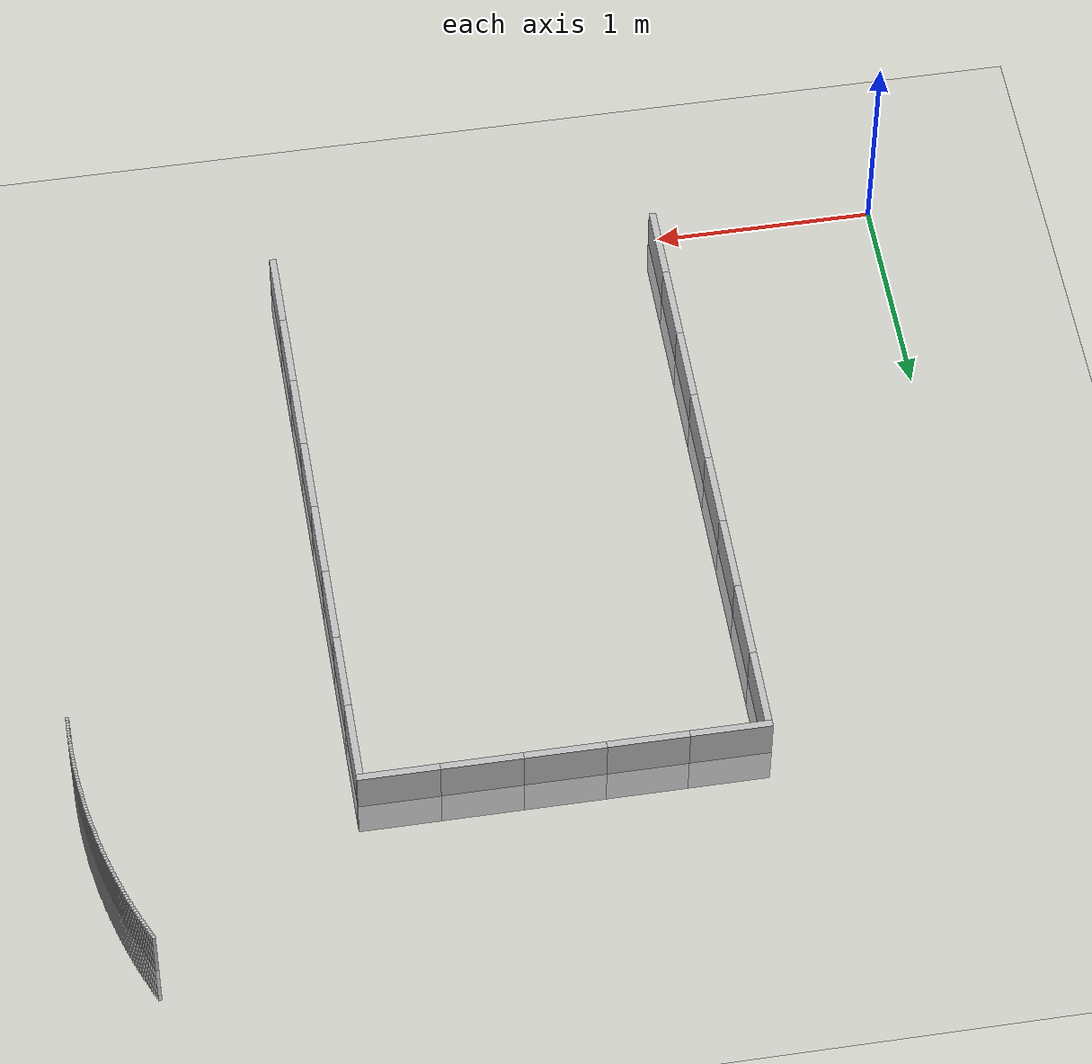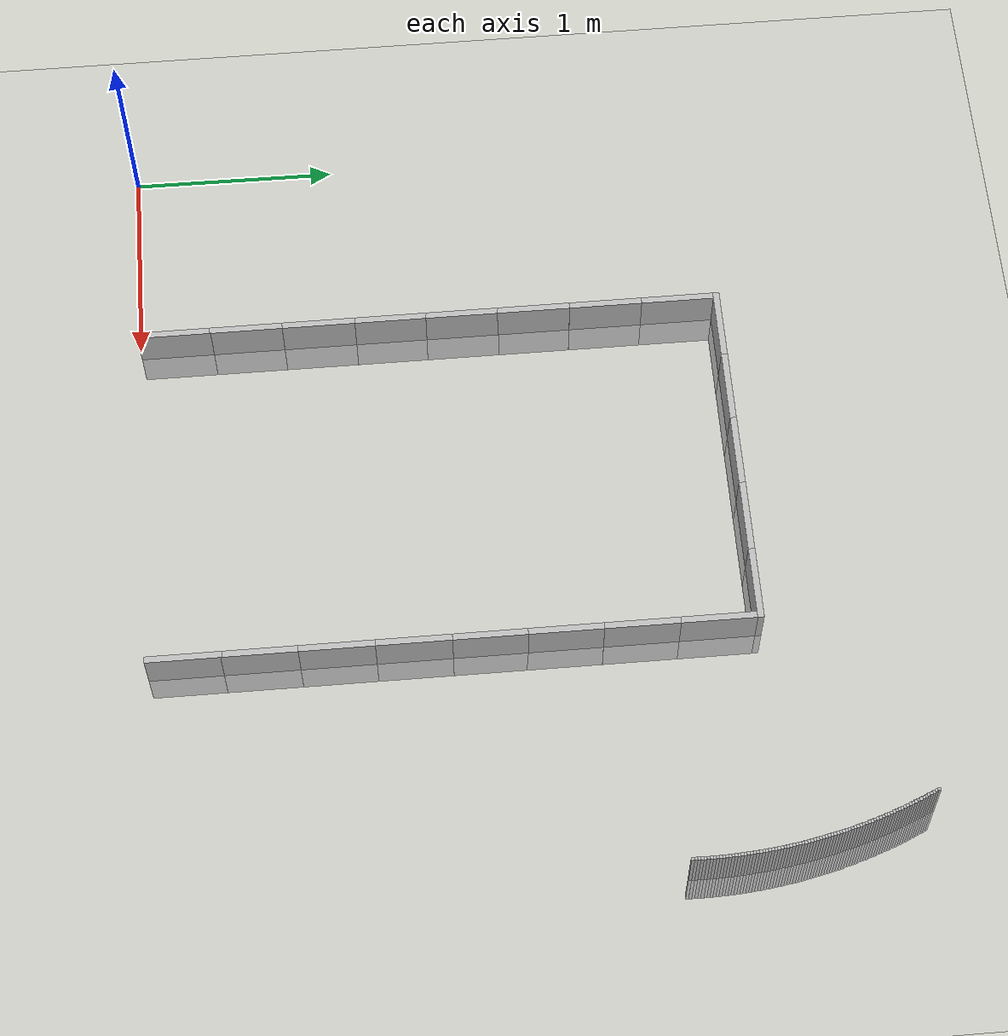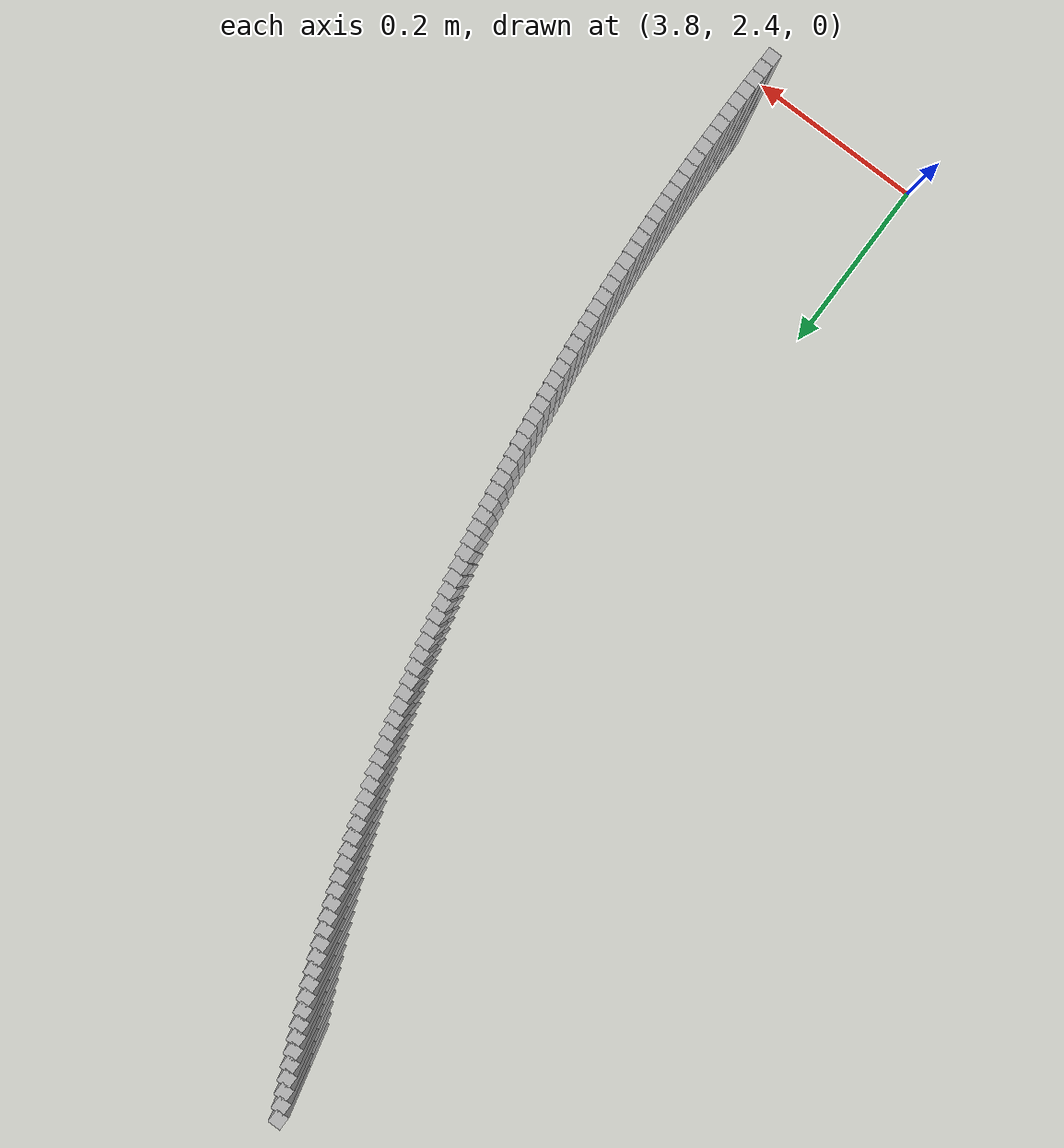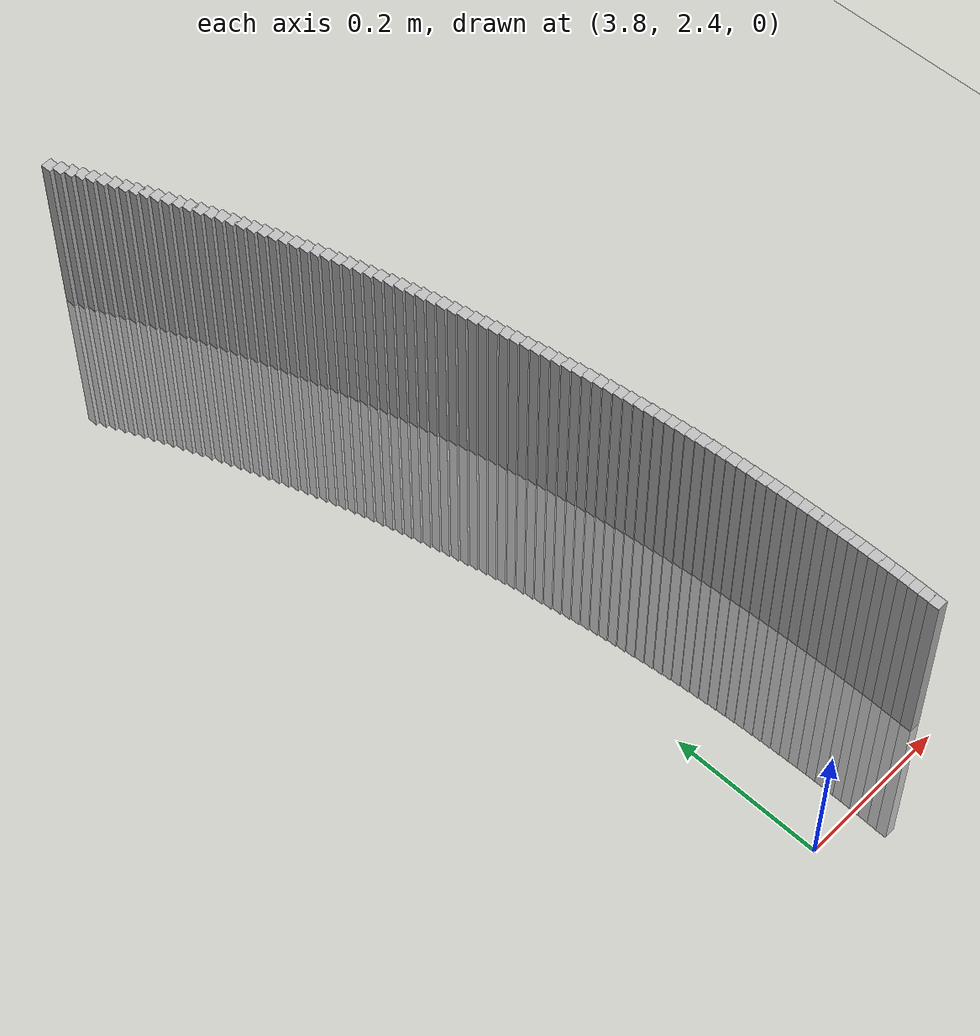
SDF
<sdf version="1.6">
 <world name="default">
  <model name="ground_plane">
   <static>1</static>
   <link name="link">
    <collision name="collision">
     <geometry><plane><normal>0 0 1</normal><size>100 100</size></plane></geometry>
     <surface>
      <contact><collide_bitmask>65535</collide_bitmask></contact>
      <friction><ode><mu>100</mu><mu2>50</mu2></ode></friction>
     </surface>
    </collision>
    <visual name="visual">
     <cast_shadows>0</cast_shadows>
     <geometry><plane><normal>0 0 1</normal><size>100 100</size></plane></geometry>
     <material>
      <script><uri>file://media/materials/scripts/gazebo.material</uri><name>Gazebo/Grey</name></script>
     </material>
    </visual>
   </link>
  </model>
  <model name="k404">
   <link name="211_link">
    <collision name="collision_211">
     <pose>3.7586545603426815 3.5716713941517746 0 0 -0 0</pose>
     <geometry><box><size>0.015 0.015 0.50</size></box></geometry>
    </collision>
    <visual name="visual_211">
     <pose>3.7586545603426815 3.5716713941517746 0 0 -0 0</pose>
     <geometry><box><size>0.015 0.015 0.50</size></box></geometry>
    </visual>
   </link>
   <link name="212_link">
    <collision name="collision_212">
     <pose>3.764573403993453 3.5591068397123613 0 0 -0 0</pose>
     <geometry><box><size>0.015 0.015 0.50</size></box></geometry>
    </collision>
    <visual name="visual_212">
     <pose>3.764573403993453 3.5591068397123613 0 0 -0 0</pose>
     <geometry><box><size>0.015 0.015 0.50</size></box></geometry>
    </visual>
   </link>
   <link name="213_link">
    <collision name="collision_213">
     <pose>3.7704223535831294 3.546509596874316 0 0 -0 0</pose>
     <geometry><box><size>0.015 0.015 0.50</size></box></geometry>
    </collision>
    <visual name="visual_213">
     <pose>3.7704223535831294 3.546509596874316 0 0 -0 0</pose>
     <geometry><box><size>0.015 0.015 0.50</size></box></geometry>
    </visual>
   </link>
   <link name="214_link">
    <collision name="collision_214">
     <pose>3.7762012285890396 3.53388005444043 0 0 -0 0</pose>
     <geometry><box><size>0.015 0.015 0.50</size></box></geometry>
    </collision>
    <visual name="visual_214">
     <pose>3.7762012285890396 3.53388005444043 0 0 -0 0</pose>
     <geometry><box><size>0.015 0.015 0.50</size></box></geometry>
    </visual>
   </link>
   <link name="215_link">
    <collision name="collision_215">
     <pose>3.7819098506513025 3.5212186022103937 0 0 -0 0</pose>
     <geometry><box><size>0.015 0.015 0.50</size></box></geometry>
    </collision>
    <visual name="visual_215">
     <pose>3.7819098506513025 3.5212186022103937 0 0 -0 0</pose>
     <geometry><box><size>0.015 0.015 0.50</size></box></geometry>
    </visual>
   </link>
   <link name="216_link">
    <collision name="collision_216">
     <pose>3.7875480435783326 3.5085256309687636 0 0 -0 0</pose>
     <geometry><box><size>0.015 0.015 0.50</size></box></geometry>
    </collision>
    <visual name="visual_216">
     <pose>3.7875480435783326 3.5085256309687636 0 0 -0 0</pose>
     <geometry><box><size>0.015 0.015 0.50</size></box></geometry>
    </visual>
   </link>
   <link name="217_link">
    <collision name="collision_217">
     <pose>3.7931156333522775 3.4958015324729037 0 0 -0 0</pose>
     <geometry><box><size>0.015 0.015 0.50</size></box></geometry>
    </collision>
    <visual name="visual_217">
     <pose>3.7931156333522775 3.4958015324729037 0 0 -0 0</pose>
     <geometry><box><size>0.015 0.015 0.50</size></box></geometry>
    </visual>
   </link>
   <link name="218_link">
    <collision name="collision_218">
     <pose>3.7986124481343877 3.4830466994408944 0 0 -0 0</pose>
     <geometry><box><size>0.015 0.015 0.50</size></box></geometry>
    </collision>
    <visual name="visual_218">
     <pose>3.7986124481343877 3.4830466994408944 0 0 -0 0</pose>
     <geometry><box><size>0.015 0.015 0.50</size></box></geometry>
    </visual>
   </link>
   <link name="219_link">
    <collision name="collision_219">
     <pose>3.8040383182703232 3.470261525539409 0 0 -0 0</pose>
     <geometry><box><size>0.015 0.015 0.50</size></box></geometry>
    </collision>
    <visual name="visual_219">
     <pose>3.8040383182703232 3.470261525539409 0 0 -0 0</pose>
     <geometry><box><size>0.015 0.015 0.50</size></box></geometry>
    </visual>
   </link>
   <link name="220_link">
    <collision name="collision_220">
     <pose>3.8093930762953865 3.457446405371565 0 0 -0 0</pose>
     <geometry><box><size>0.015 0.015 0.50</size></box></geometry>
    </collision>
    <visual name="visual_220">
     <pose>3.8093930762953865 3.457446405371565 0 0 -0 0</pose>
     <geometry><box><size>0.015 0.015 0.50</size></box></geometry>
    </visual>
   </link>
   <link name="221_link">
    <collision name="collision_221">
     <pose>3.8146765569396934 3.4446017344647455 0 0 -0 0</pose>
     <geometry><box><size>0.015 0.015 0.50</size></box></geometry>
    </collision>
    <visual name="visual_221">
     <pose>3.8146765569396934 3.4446017344647455 0 0 -0 0</pose>
     <geometry><box><size>0.015 0.015 0.50</size></box></geometry>
    </visual>
   </link>
   <link name="222_link">
    <collision name="collision_222">
     <pose>3.8198885971332732 3.431727909258391 0 0 -0 0</pose>
     <geometry><box><size>0.015 0.015 0.50</size></box></geometry>
    </collision>
    <visual name="visual_222">
     <pose>3.8198885971332732 3.431727909258391 0 0 -0 0</pose>
     <geometry><box><size>0.015 0.015 0.50</size></box></geometry>
    </visual>
   </link>
   <link name="223_link">
    <collision name="collision_223">
     <pose>3.825029036011102 3.418825327091764 0 0 -0 0</pose>
     <geometry><box><size>0.015 0.015 0.50</size></box></geometry>
    </collision>
    <visual name="visual_223">
     <pose>3.825029036011102 3.418825327091764 0 0 -0 0</pose>
     <geometry><box><size>0.015 0.015 0.50</size></box></geometry>
    </visual>
   </link>
   <link name="224_link">
    <collision name="collision_224">
     <pose>3.8300977149180655 3.405894386191684 0 0 -0 0</pose>
     <geometry><box><size>0.015 0.015 0.50</size></box></geometry>
    </collision>
    <visual name="visual_224">
     <pose>3.8300977149180655 3.405894386191684 0 0 -0 0</pose>
     <geometry><box><size>0.015 0.015 0.50</size></box></geometry>
    </visual>
   </link>
   <link name="225_link">
    <collision name="collision_225">
     <pose>3.835094477413861 3.3929354856602396 0 0 -0 0</pose>
     <geometry><box><size>0.015 0.015 0.50</size></box></geometry>
    </collision>
    <visual name="visual_225">
     <pose>3.835094477413861 3.3929354856602396 0 0 -0 0</pose>
     <geometry><box><size>0.015 0.015 0.50</size></box></geometry>
    </visual>
   </link>
   <link name="226_link">
    <collision name="collision_226">
     <pose>3.840019169277819 3.379949025462467 0 0 -0 0</pose>
     <geometry><box><size>0.015 0.015 0.50</size></box></geometry>
    </collision>
    <visual name="visual_226">
     <pose>3.840019169277819 3.379949025462467 0 0 -0 0</pose>
     <geometry><box><size>0.015 0.015 0.50</size></box></geometry>
    </visual>
   </link>
   <link name="227_link">
    <collision name="collision_227">
     <pose>3.8448716385136685 3.366935406414009 0 0 -0 0</pose>
     <geometry><box><size>0.015 0.015 0.50</size></box></geometry>
    </collision>
    <visual name="visual_227">
     <pose>3.8448716385136685 3.366935406414009 0 0 -0 0</pose>
     <geometry><box><size>0.015 0.015 0.50</size></box></geometry>
    </visual>
   </link>
   <link name="228_link">
    <collision name="collision_228">
     <pose>3.849651735354226 3.3538950301687405 0 0 -0 0</pose>
     <geometry><box><size>0.015 0.015 0.50</size></box></geometry>
    </collision>
    <visual name="visual_228">
     <pose>3.849651735354226 3.3538950301687405 0 0 -0 0</pose>
     <geometry><box><size>0.015 0.015 0.50</size></box></geometry>
    </visual>
   </link>
   <link name="229_link">
    <collision name="collision_229">
     <pose>3.854359312266017 3.3408282992063754 0 0 -0 0</pose>
     <geometry><box><size>0.015 0.015 0.50</size></box></geometry>
    </collision>
    <visual name="visual_229">
     <pose>3.854359312266017 3.3408282992063754 0 0 -0 0</pose>
     <geometry><box><size>0.015 0.015 0.50</size></box></geometry>
    </visual>
   </link>
   <link name="230_link">
    <collision name="collision_230">
     <pose>3.858994223953833 3.327735616820042 0 0 -0 0</pose>
     <geometry><box><size>0.015 0.015 0.50</size></box></geometry>
    </collision>
    <visual name="visual_230">
     <pose>3.858994223953833 3.327735616820042 0 0 -0 0</pose>
     <geometry><box><size>0.015 0.015 0.50</size></box></geometry>
    </visual>
   </link>
   <link name="231_link">
    <collision name="collision_231">
     <pose>3.86355632736521 3.3146173871038354 0 0 -0 0</pose>
     <geometry><box><size>0.015 0.015 0.50</size></box></geometry>
    </collision>
    <visual name="visual_231">
     <pose>3.86355632736521 3.3146173871038354 0 0 -0 0</pose>
     <geometry><box><size>0.015 0.015 0.50</size></box></geometry>
    </visual>
   </link>
   <link name="232_link">
    <collision name="collision_232">
     <pose>3.868045481694851 3.3014740149403483 0 0 -0 0</pose>
     <geometry><box><size>0.015 0.015 0.50</size></box></geometry>
    </collision>
    <visual name="visual_232">
     <pose>3.868045481694851 3.3014740149403483 0 0 -0 0</pose>
     <geometry><box><size>0.015 0.015 0.50</size></box></geometry>
    </visual>
   </link>
   <link name="233_link">
    <collision name="collision_233">
     <pose>3.8724615483889657 3.288305905988172 0 0 -0 0</pose>
     <geometry><box><size>0.015 0.015 0.50</size></box></geometry>
    </collision>
    <visual name="visual_233">
     <pose>3.8724615483889657 3.288305905988172 0 0 -0 0</pose>
     <geometry><box><size>0.015 0.015 0.50</size></box></geometry>
    </visual>
   </link>
   <link name="234_link">
    <collision name="collision_234">
     <pose>3.87680439114955 3.275113466669376 0 0 -0 0</pose>
     <geometry><box><size>0.015 0.015 0.50</size></box></geometry>
    </collision>
    <visual name="visual_234">
     <pose>3.87680439114955 3.275113466669376 0 0 -0 0</pose>
     <geometry><box><size>0.015 0.015 0.50</size></box></geometry>
    </visual>
   </link>
   <link name="235_link">
    <collision name="collision_235">
     <pose>3.8810738759385917 3.2618971041569678 0 0 -0 0</pose>
     <geometry><box><size>0.015 0.015 0.50</size></box></geometry>
    </collision>
    <visual name="visual_235">
     <pose>3.8810738759385917 3.2618971041569678 0 0 -0 0</pose>
     <geometry><box><size>0.015 0.015 0.50</size></box></geometry>
    </visual>
   </link>
   <link name="236_link">
    <collision name="collision_236">
     <pose>3.8852698709822078 3.2486572263623197 0 0 -0 0</pose>
     <geometry><box><size>0.015 0.015 0.50</size></box></geometry>
    </collision>
    <visual name="visual_236">
     <pose>3.8852698709822078 3.2486572263623197 0 0 -0 0</pose>
     <geometry><box><size>0.015 0.015 0.50</size></box></geometry>
    </visual>
   </link>
   <link name="237_link">
    <collision name="collision_237">
     <pose>3.8893922467747117 3.2353942419225854 0 0 -0 0</pose>
     <geometry><box><size>0.015 0.015 0.50</size></box></geometry>
    </collision>
    <visual name="visual_237">
     <pose>3.8893922467747117 3.2353942419225854 0 0 -0 0</pose>
     <geometry><box><size>0.015 0.015 0.50</size></box></geometry>
    </visual>
   </link>
   <link name="238_link">
    <collision name="collision_238">
     <pose>3.8934408760826105 3.222108560188083 0 0 -0 0</pose>
     <geometry><box><size>0.015 0.015 0.50</size></box></geometry>
    </collision>
    <visual name="visual_238">
     <pose>3.8934408760826105 3.222108560188083 0 0 -0 0</pose>
     <geometry><box><size>0.015 0.015 0.50</size></box></geometry>
    </visual>
   </link>
   <link name="239_link">
    <collision name="collision_239">
     <pose>3.89741563394853 3.2088005912096635 0 0 -0 0</pose>
     <geometry><box><size>0.015 0.015 0.50</size></box></geometry>
    </collision>
    <visual name="visual_239">
     <pose>3.89741563394853 3.2088005912096635 0 0 -0 0</pose>
     <geometry><box><size>0.015 0.015 0.50</size></box></geometry>
    </visual>
   </link>
   <link name="240_link">
    <collision name="collision_240">
     <pose>3.901316397695074 3.1954707457260536 0 0 -0 0</pose>
     <geometry><box><size>0.015 0.015 0.50</size></box></geometry>
    </collision>
    <visual name="visual_240">
     <pose>3.901316397695074 3.1954707457260536 0 0 -0 0</pose>
     <geometry><box><size>0.015 0.015 0.50</size></box></geometry>
    </visual>
   </link>
   <link name="241_link">
    <collision name="collision_241">
     <pose>3.9051430469286093 3.1821194351511797 0 0 -0 0</pose>
     <geometry><box><size>0.015 0.015 0.50</size></box></geometry>
    </collision>
    <visual name="visual_241">
     <pose>3.9051430469286093 3.1821194351511797 0 0 -0 0</pose>
     <geometry><box><size>0.015 0.015 0.50</size></box></geometry>
    </visual>
   </link>
   <link name="242_link">
    <collision name="collision_242">
     <pose>3.9088954635429825 3.1687470715614685 0 0 -0 0</pose>
     <geometry><box><size>0.015 0.015 0.50</size></box></geometry>
    </collision>
    <visual name="visual_242">
     <pose>3.9088954635429825 3.1687470715614685 0 0 -0 0</pose>
     <geometry><box><size>0.015 0.015 0.50</size></box></geometry>
    </visual>
   </link>
   <link name="243_link">
    <collision name="collision_243">
     <pose>3.912573531723163 3.1553540676831293 0 0 -0 0</pose>
     <geometry><box><size>0.015 0.015 0.50</size></box></geometry>
    </collision>
    <visual name="visual_243">
     <pose>3.912573531723163 3.1553540676831293 0 0 -0 0</pose>
     <geometry><box><size>0.015 0.015 0.50</size></box></geometry>
    </visual>
   </link>
   <link name="244_link">
    <collision name="collision_244">
     <pose>3.9161771379488206 3.141940836879417 0 0 -0 0</pose>
     <geometry><box><size>0.015 0.015 0.50</size></box></geometry>
    </collision>
    <visual name="visual_244">
     <pose>3.9161771379488206 3.141940836879417 0 0 -0 0</pose>
     <geometry><box><size>0.015 0.015 0.50</size></box></geometry>
    </visual>
   </link>
   <link name="245_link">
    <collision name="collision_245">
     <pose>3.9197061709978267 3.1285077931378713 0 0 -0 0</pose>
     <geometry><box><size>0.015 0.015 0.50</size></box></geometry>
    </collision>
    <visual name="visual_245">
     <pose>3.9197061709978267 3.1285077931378713 0 0 -0 0</pose>
     <geometry><box><size>0.015 0.015 0.50</size></box></geometry>
    </visual>
   </link>
   <link name="246_link">
    <collision name="collision_246">
     <pose>3.923160521949688 3.115055351057541 0 0 -0 0</pose>
     <geometry><box><size>0.015 0.015 0.50</size></box></geometry>
    </collision>
    <visual name="visual_246">
     <pose>3.923160521949688 3.115055351057541 0 0 -0 0</pose>
     <geometry><box><size>0.015 0.015 0.50</size></box></geometry>
    </visual>
   </link>
   <link name="247_link">
    <collision name="collision_247">
     <pose>3.9265400841889093 3.101583925836189 0 0 -0 0</pose>
     <geometry><box><size>0.015 0.015 0.50</size></box></geometry>
    </collision>
    <visual name="visual_247">
     <pose>3.9265400841889093 3.101583925836189 0 0 -0 0</pose>
     <geometry><box><size>0.015 0.015 0.50</size></box></geometry>
    </visual>
   </link>
   <link name="248_link">
    <collision name="collision_248">
     <pose>3.9298447534082817 3.0880939332574737 0 0 -0 0</pose>
     <geometry><box><size>0.015 0.015 0.50</size></box></geometry>
    </collision>
    <visual name="visual_248">
     <pose>3.9298447534082817 3.0880939332574737 0 0 -0 0</pose>
     <geometry><box><size>0.015 0.015 0.50</size></box></geometry>
    </visual>
   </link>
   <link name="249_link">
    <collision name="collision_249">
     <pose>3.933074427612105 3.07458578967812 0 0 -0 0</pose>
     <geometry><box><size>0.015 0.015 0.50</size></box></geometry>
    </collision>
    <visual name="visual_249">
     <pose>3.933074427612105 3.07458578967812 0 0 -0 0</pose>
     <geometry><box><size>0.015 0.015 0.50</size></box></geometry>
    </visual>
   </link>
   <link name="250_link">
    <collision name="collision_250">
     <pose>3.9362290071193318 3.061059912015068 0 0 -0 0</pose>
     <geometry><box><size>0.015 0.015 0.50</size></box></geometry>
    </collision>
    <visual name="visual_250">
     <pose>3.9362290071193318 3.061059912015068 0 0 -0 0</pose>
     <geometry><box><size>0.015 0.015 0.50</size></box></geometry>
    </visual>
   </link>
   <link name="251_link">
    <collision name="collision_251">
     <pose>3.939308394566648 3.047516717732604 0 0 -0 0</pose>
     <geometry><box><size>0.015 0.015 0.50</size></box></geometry>
    </collision>
    <visual name="visual_251">
     <pose>3.939308394566648 3.047516717732604 0 0 -0 0</pose>
     <geometry><box><size>0.015 0.015 0.50</size></box></geometry>
    </visual>
   </link>
   <link name="252_link">
    <collision name="collision_252">
     <pose>3.942312494911475 3.0339566248294756 0 0 -0 0</pose>
     <geometry><box><size>0.015 0.015 0.50</size></box></geometry>
    </collision>
    <visual name="visual_252">
     <pose>3.942312494911475 3.0339566248294756 0 0 -0 0</pose>
     <geometry><box><size>0.015 0.015 0.50</size></box></geometry>
    </visual>
   </link>
   <link name="253_link">
    <collision name="collision_253">
     <pose>3.945241215434906 3.0203800518259927 0 0 -0 0</pose>
     <geometry><box><size>0.015 0.015 0.50</size></box></geometry>
    </collision>
    <visual name="visual_253">
     <pose>3.945241215434906 3.0203800518259927 0 0 -0 0</pose>
     <geometry><box><size>0.015 0.015 0.50</size></box></geometry>
    </visual>
   </link>
   <link name="254_link">
    <collision name="collision_254">
     <pose>3.948094465744564 3.006787417751109 0 0 -0 0</pose>
     <geometry><box><size>0.015 0.015 0.50</size></box></geometry>
    </collision>
    <visual name="visual_254">
     <pose>3.948094465744564 3.006787417751109 0 0 -0 0</pose>
     <geometry><box><size>0.015 0.015 0.50</size></box></geometry>
    </visual>
   </link>
   <link name="255_link">
    <collision name="collision_255">
     <pose>3.9508721577773946 2.9931791421294878 0 0 -0 0</pose>
     <geometry><box><size>0.015 0.015 0.50</size></box></geometry>
    </collision>
    <visual name="visual_255">
     <pose>3.9508721577773946 2.9931791421294878 0 0 -0 0</pose>
     <geometry><box><size>0.015 0.015 0.50</size></box></geometry>
    </visual>
   </link>
   <link name="256_link">
    <collision name="collision_256">
     <pose>3.953574205802383 2.979555644968556 0 0 -0 0</pose>
     <geometry><box><size>0.015 0.015 0.50</size></box></geometry>
    </collision>
    <visual name="visual_256">
     <pose>3.953574205802383 2.979555644968556 0 0 -0 0</pose>
     <geometry><box><size>0.015 0.015 0.50</size></box></geometry>
    </visual>
   </link>
   <link name="257_link">
    <collision name="collision_257">
     <pose>3.9562005264231983 2.965917346745539 0 0 -0 0</pose>
     <geometry><box><size>0.015 0.015 0.50</size></box></geometry>
    </collision>
    <visual name="visual_257">
     <pose>3.9562005264231983 2.965917346745539 0 0 -0 0</pose>
     <geometry><box><size>0.015 0.015 0.50</size></box></geometry>
    </visual>
   </link>
   <link name="258_link">
    <collision name="collision_258">
     <pose>3.9587510385807723 2.952264668394486 0 0 -0 0</pose>
     <geometry><box><size>0.015 0.015 0.50</size></box></geometry>
    </collision>
    <visual name="visual_258">
     <pose>3.9587510385807723 2.952264668394486 0 0 -0 0</pose>
     <geometry><box><size>0.015 0.015 0.50</size></box></geometry>
    </visual>
   </link>
   <link name="259_link">
    <collision name="collision_259">
     <pose>3.9612256635557954 2.9385980312932727 0 0 -0 0</pose>
     <geometry><box><size>0.015 0.015 0.50</size></box></geometry>
    </collision>
    <visual name="visual_259">
     <pose>3.9612256635557954 2.9385980312932727 0 0 -0 0</pose>
     <geometry><box><size>0.015 0.015 0.50</size></box></geometry>
    </visual>
   </link>
   <link name="260_link">
    <collision name="collision_260">
     <pose>3.9636243249711502 2.9249178572506027 0 0 -0 0</pose>
     <geometry><box><size>0.015 0.015 0.50</size></box></geometry>
    </collision>
    <visual name="visual_260">
     <pose>3.9636243249711502 2.9249178572506027 0 0 -0 0</pose>
     <geometry><box><size>0.015 0.015 0.50</size></box></geometry>
    </visual>
   </link>
   <link name="261_link">
    <collision name="collision_261">
     <pose>3.965946948794268 2.911224568492983 0 0 -0 0</pose>
     <geometry><box><size>0.015 0.015 0.50</size></box></geometry>
    </collision>
    <visual name="visual_261">
     <pose>3.965946948794268 2.911224568492983 0 0 -0 0</pose>
     <geometry><box><size>0.015 0.015 0.50</size></box></geometry>
    </visual>
   </link>
   <link name="262_link">
    <collision name="collision_262">
     <pose>3.968193463339412 2.897518587651696 0 0 -0 0</pose>
     <geometry><box><size>0.015 0.015 0.50</size></box></geometry>
    </collision>
    <visual name="visual_262">
     <pose>3.968193463339412 2.897518587651696 0 0 -0 0</pose>
     <geometry><box><size>0.015 0.015 0.50</size></box></geometry>
    </visual>
   </link>
   <link name="263_link">
    <collision name="collision_263">
     <pose>3.970363799269892 2.8838003377497543 0 0 -0 0</pose>
     <geometry><box><size>0.015 0.015 0.50</size></box></geometry>
    </collision>
    <visual name="visual_263">
     <pose>3.970363799269892 2.8838003377497543 0 0 -0 0</pose>
     <geometry><box><size>0.015 0.015 0.50</size></box></geometry>
    </visual>
   </link>
   <link name="264_link">
    <collision name="collision_264">
     <pose>3.972457889600203 2.870070242188843 0 0 -0 0</pose>
     <geometry><box><size>0.015 0.015 0.50</size></box></geometry>
    </collision>
    <visual name="visual_264">
     <pose>3.972457889600203 2.870070242188843 0 0 -0 0</pose>
     <geometry><box><size>0.015 0.015 0.50</size></box></geometry>
    </visual>
   </link>
   <link name="265_link">
    <collision name="collision_265">
     <pose>3.9744756696980947 2.8563287247362537 0 0 -0 0</pose>
     <geometry><box><size>0.015 0.015 0.50</size></box></geometry>
    </collision>
    <visual name="visual_265">
     <pose>3.9744756696980947 2.8563287247362537 0 0 -0 0</pose>
     <geometry><box><size>0.015 0.015 0.50</size></box></geometry>
    </visual>
   </link>
   <link name="266_link">
    <collision name="collision_266">
     <pose>3.976417077286563 2.842576209511805 0 0 -0 0</pose>
     <geometry><box><size>0.015 0.015 0.50</size></box></geometry>
    </collision>
    <visual name="visual_266">
     <pose>3.976417077286563 2.842576209511805 0 0 -0 0</pose>
     <geometry><box><size>0.015 0.015 0.50</size></box></geometry>
    </visual>
   </link>
   <link name="267_link">
    <collision name="collision_267">
     <pose>3.9782820524457754 2.828813120974751 0 0 -0 0</pose>
     <geometry><box><size>0.015 0.015 0.50</size></box></geometry>
    </collision>
    <visual name="visual_267">
     <pose>3.9782820524457754 2.828813120974751 0 0 -0 0</pose>
     <geometry><box><size>0.015 0.015 0.50</size></box></geometry>
    </visual>
   </link>
   <link name="268_link">
    <collision name="collision_268">
     <pose>3.980070537614917 2.815039883910683 0 0 -0 0</pose>
     <geometry><box><size>0.015 0.015 0.50</size></box></geometry>
    </collision>
    <visual name="visual_268">
     <pose>3.980070537614917 2.815039883910683 0 0 -0 0</pose>
     <geometry><box><size>0.015 0.015 0.50</size></box></geometry>
    </visual>
   </link>
   <link name="269_link">
    <collision name="collision_269">
     <pose>3.9817824775939714 2.8012569234184164 0 0 -0 0</pose>
     <geometry><box><size>0.015 0.015 0.50</size></box></geometry>
    </collision>
    <visual name="visual_269">
     <pose>3.9817824775939714 2.8012569234184164 0 0 -0 0</pose>
     <geometry><box><size>0.015 0.015 0.50</size></box></geometry>
    </visual>
   </link>
   <link name="270_link">
    <collision name="collision_270">
     <pose>3.98341781954542 2.787464664896873 0 0 -0 0</pose>
     <geometry><box><size>0.015 0.015 0.50</size></box></geometry>
    </collision>
    <visual name="visual_270">
     <pose>3.98341781954542 2.787464664896873 0 0 -0 0</pose>
     <geometry><box><size>0.015 0.015 0.50</size></box></geometry>
    </visual>
   </link>
   <link name="271_link">
    <collision name="collision_271">
     <pose>3.984976512995876 2.773663534031949 0 0 -0 0</pose>
     <geometry><box><size>0.015 0.015 0.50</size></box></geometry>
    </collision>
    <visual name="visual_271">
     <pose>3.984976512995876 2.773663534031949 0 0 -0 0</pose>
     <geometry><box><size>0.015 0.015 0.50</size></box></geometry>
    </visual>
   </link>
   <link name="272_link">
    <collision name="collision_272">
     <pose>3.986458509837641 2.7598539567833775 0 0 -0 0</pose>
     <geometry><box><size>0.015 0.015 0.50</size></box></geometry>
    </collision>
    <visual name="visual_272">
     <pose>3.986458509837641 2.7598539567833775 0 0 -0 0</pose>
     <geometry><box><size>0.015 0.015 0.50</size></box></geometry>
    </visual>
   </link>
   <link name="273_link">
    <collision name="collision_273">
     <pose>3.987863764330189 2.7460363593715824 0 0 -0 0</pose>
     <geometry><box><size>0.015 0.015 0.50</size></box></geometry>
    </collision>
    <visual name="visual_273">
     <pose>3.987863764330189 2.7460363593715824 0 0 -0 0</pose>
     <geometry><box><size>0.015 0.015 0.50</size></box></geometry>
    </visual>
   </link>
   <link name="274_link">
    <collision name="collision_274">
     <pose>3.989192233101579 2.732211168264523 0 0 -0 0</pose>
     <geometry><box><size>0.015 0.015 0.50</size></box></geometry>
    </collision>
    <visual name="visual_274">
     <pose>3.989192233101579 2.732211168264523 0 0 -0 0</pose>
     <geometry><box><size>0.015 0.015 0.50</size></box></geometry>
    </visual>
   </link>
   <link name="275_link">
    <collision name="collision_275">
     <pose>3.9904438751497944 2.718378810164532 0 0 -0 0</pose>
     <geometry><box><size>0.015 0.015 0.50</size></box></geometry>
    </collision>
    <visual name="visual_275">
     <pose>3.9904438751497944 2.718378810164532 0 0 -0 0</pose>
     <geometry><box><size>0.015 0.015 0.50</size></box></geometry>
    </visual>
   </link>
   <link name="276_link">
    <collision name="collision_276">
     <pose>3.991618651844006 2.7045397119951424 0 0 -0 0</pose>
     <geometry><box><size>0.015 0.015 0.50</size></box></geometry>
    </collision>
    <visual name="visual_276">
     <pose>3.991618651844006 2.7045397119951424 0 0 -0 0</pose>
     <geometry><box><size>0.015 0.015 0.50</size></box></geometry>
    </visual>
   </link>
   <link name="277_link">
    <collision name="collision_277">
     <pose>3.9927165269257694 2.690694300887916 0 0 -0 0</pose>
     <geometry><box><size>0.015 0.015 0.50</size></box></geometry>
    </collision>
    <visual name="visual_277">
     <pose>3.9927165269257694 2.690694300887916 0 0 -0 0</pose>
     <geometry><box><size>0.015 0.015 0.50</size></box></geometry>
    </visual>
   </link>
   <link name="278_link">
    <collision name="collision_278">
     <pose>3.993737466510136 2.6768430041692572 0 0 -0 0</pose>
     <geometry><box><size>0.015 0.015 0.50</size></box></geometry>
    </collision>
    <visual name="visual_278">
     <pose>3.993737466510136 2.6768430041692572 0 0 -0 0</pose>
     <geometry><box><size>0.015 0.015 0.50</size></box></geometry>
    </visual>
   </link>
   <link name="279_link">
    <collision name="collision_279">
     <pose>3.9946814390867074 2.662986249347224 0 0 -0 0</pose>
     <geometry><box><size>0.015 0.015 0.50</size></box></geometry>
    </collision>
    <visual name="visual_279">
     <pose>3.9946814390867074 2.662986249347224 0 0 -0 0</pose>
     <geometry><box><size>0.015 0.015 0.50</size></box></geometry>
    </visual>
   </link>
   <link name="280_link">
    <collision name="collision_280">
     <pose>3.9955484155206014 2.6491244640983345 0 0 -0 0</pose>
     <geometry><box><size>0.015 0.015 0.50</size></box></geometry>
    </collision>
    <visual name="visual_280">
     <pose>3.9955484155206014 2.6491244640983345 0 0 -0 0</pose>
     <geometry><box><size>0.015 0.015 0.50</size></box></geometry>
    </visual>
   </link>
   <link name="281_link">
    <collision name="collision_281">
     <pose>3.9963383690533556 2.6352580762543663 0 0 -0 0</pose>
     <geometry><box><size>0.015 0.015 0.50</size></box></geometry>
    </collision>
    <visual name="visual_281">
     <pose>3.9963383690533556 2.6352580762543663 0 0 -0 0</pose>
     <geometry><box><size>0.015 0.015 0.50</size></box></geometry>
    </visual>
   </link>
   <link name="282_link">
    <collision name="collision_282">
     <pose>3.997051275303751 2.621387513789152 0 0 -0 0</pose>
     <geometry><box><size>0.015 0.015 0.50</size></box></geometry>
    </collision>
    <visual name="visual_282">
     <pose>3.997051275303751 2.621387513789152 0 0 -0 0</pose>
     <geometry><box><size>0.015 0.015 0.50</size></box></geometry>
    </visual>
   </link>
   <link name="283_link">
    <collision name="collision_283">
     <pose>3.997687112268564 2.607513204805371 0 0 -0 0</pose>
     <geometry><box><size>0.015 0.015 0.50</size></box></geometry>
    </collision>
    <visual name="visual_283">
     <pose>3.997687112268564 2.607513204805371 0 0 -0 0</pose>
     <geometry><box><size>0.015 0.015 0.50</size></box></geometry>
    </visual>
   </link>
   <link name="284_link">
    <collision name="collision_284">
     <pose>3.998245860323248 2.5936355775213333 0 0 -0 0</pose>
     <geometry><box><size>0.015 0.015 0.50</size></box></geometry>
    </collision>
    <visual name="visual_284">
     <pose>3.998245860323248 2.5936355775213333 0 0 -0 0</pose>
     <geometry><box><size>0.015 0.015 0.50</size></box></geometry>
    </visual>
   </link>
   <link name="285_link">
    <collision name="collision_285">
     <pose>3.998727502222537 2.579755060257769 0 0 -0 0</pose>
     <geometry><box><size>0.015 0.015 0.50</size></box></geometry>
    </collision>
    <visual name="visual_285">
     <pose>3.998727502222537 2.579755060257769 0 0 -0 0</pose>
     <geometry><box><size>0.015 0.015 0.50</size></box></geometry>
    </visual>
   </link>
   <link name="286_link">
    <collision name="collision_286">
     <pose>3.999132023100979 2.565872081424602 0 0 -0 0</pose>
     <geometry><box><size>0.015 0.015 0.50</size></box></geometry>
    </collision>
    <visual name="visual_286">
     <pose>3.999132023100979 2.565872081424602 0 0 -0 0</pose>
     <geometry><box><size>0.015 0.015 0.50</size></box></geometry>
    </visual>
   </link>
   <link name="287_link">
    <collision name="collision_287">
     <pose>3.9994594104733925 2.551987069507731 0 0 -0 0</pose>
     <geometry><box><size>0.015 0.015 0.50</size></box></geometry>
    </collision>
    <visual name="visual_287">
     <pose>3.9994594104733925 2.551987069507731 0 0 -0 0</pose>
     <geometry><box><size>0.015 0.015 0.50</size></box></geometry>
    </visual>
   </link>
   <link name="288_link">
    <collision name="collision_288">
     <pose>3.999709654235256 2.538100453055805 0 0 -0 0</pose>
     <geometry><box><size>0.015 0.015 0.50</size></box></geometry>
    </collision>
    <visual name="visual_288">
     <pose>3.999709654235256 2.538100453055805 0 0 -0 0</pose>
     <geometry><box><size>0.015 0.015 0.50</size></box></geometry>
    </visual>
   </link>
   <link name="289_link">
    <collision name="collision_289">
     <pose>3.9998827466630162 2.524212660666994 0 0 -0 0</pose>
     <geometry><box><size>0.015 0.015 0.50</size></box></geometry>
    </collision>
    <visual name="visual_289">
     <pose>3.9998827466630162 2.524212660666994 0 0 -0 0</pose>
     <geometry><box><size>0.015 0.015 0.50</size></box></geometry>
    </visual>
   </link>
   <link name="290_link">
    <collision name="collision_290">
     <pose>3.9999786824143277 2.510324120975764 0 0 -0 0</pose>
     <geometry><box><size>0.015 0.015 0.50</size></box></geometry>
    </collision>
    <visual name="visual_290">
     <pose>3.9999786824143277 2.510324120975764 0 0 -0 0</pose>
     <geometry><box><size>0.015 0.015 0.50</size></box></geometry>
    </visual>
   </link>
   <link name="291_link">
    <collision name="collision_291">
     <pose>3.9999974585282185 2.4964352626396438 0 0 -0 0</pose>
     <geometry><box><size>0.015 0.015 0.50</size></box></geometry>
    </collision>
    <visual name="visual_291">
     <pose>3.9999974585282185 2.4964352626396438 0 0 -0 0</pose>
     <geometry><box><size>0.015 0.015 0.50</size></box></geometry>
    </visual>
   </link>
   <link name="292_link">
    <collision name="collision_292">
     <pose>3.99993907442518 2.482546514325999 0 0 -0 0</pose>
     <geometry><box><size>0.015 0.015 0.50</size></box></geometry>
    </collision>
    <visual name="visual_292">
     <pose>3.99993907442518 2.482546514325999 0 0 -0 0</pose>
     <geometry><box><size>0.015 0.015 0.50</size></box></geometry>
    </visual>
   </link>
   <link name="293_link">
    <collision name="collision_293">
     <pose>3.999803531907187 2.468658304698798 0 0 -0 0</pose>
     <geometry><box><size>0.015 0.015 0.50</size></box></geometry>
    </collision>
    <visual name="visual_293">
     <pose>3.999803531907187 2.468658304698798 0 0 -0 0</pose>
     <geometry><box><size>0.015 0.015 0.50</size></box></geometry>
    </visual>
   </link>
   <link name="294_link">
    <collision name="collision_294">
     <pose>3.9995908351576386 2.454771062405384 0 0 -0 0</pose>
     <geometry><box><size>0.015 0.015 0.50</size></box></geometry>
    </collision>
    <visual name="visual_294">
     <pose>3.9995908351576386 2.454771062405384 0 0 -0 0</pose>
     <geometry><box><size>0.015 0.015 0.50</size></box></geometry>
    </visual>
   </link>
   <link name="295_link">
    <collision name="collision_295">
     <pose>3.9993009907412334 2.4408852160632426 0 0 -0 0</pose>
     <geometry><box><size>0.015 0.015 0.50</size></box></geometry>
    </collision>
    <visual name="visual_295">
     <pose>3.9993009907412334 2.4408852160632426 0 0 -0 0</pose>
     <geometry><box><size>0.015 0.015 0.50</size></box></geometry>
    </visual>
   </link>
   <link name="296_link">
    <collision name="collision_296">
     <pose>3.9989340076037627 2.427001194246778 0 0 -0 0</pose>
     <geometry><box><size>0.015 0.015 0.50</size></box></geometry>
    </collision>
    <visual name="visual_296">
     <pose>3.9989340076037627 2.427001194246778 0 0 -0 0</pose>
     <geometry><box><size>0.015 0.015 0.50</size></box></geometry>
    </visual>
   </link>
   <static>true</static>
  </model>
  <model name="Placa00">
   <pose>2.8 2.69109 0 0 -0 0</pose>
   <static>1</static>
   <link name="link">
    <collision name="collision"><geometry><box><size>0.031694 0.360886 0.40006</size></box></geometry></collision>
    <visual name="visual"><geometry><box><size>0.031694 0.360886 0.40006</size></box></geometry></visual>
   </link>
  </model>
  <model name="Placa01">
   <pose>2.8 2.33075 0 0 -0 0</pose>
   <static>1</static>
   <link name="link">
    <collision name="collision"><geometry><box><size>0.031694 0.360886 0.40006</size></box></geometry></collision>
    <visual name="visual"><geometry><box><size>0.031694 0.360886 0.40006</size></box></geometry></visual>
   </link>
  </model>
  <model name="Placa02">
   <pose>2.8 1.96943 0 0 -0 0</pose>
   <static>1</static>
   <link name="link">
    <collision name="collision"><geometry><box><size>0.031694 0.360886 0.40006</size></box></geometry></collision>
    <visual name="visual"><geometry><box><size>0.031694 0.360886 0.40006</size></box></geometry></visual>
   </link>
  </model>
  <model name="Placa03">
   <pose>2.8 1.61252 0 0 -0 0</pose>
   <static>1</static>
   <link name="link">
    <collision name="collision"><geometry><box><size>0.031694 0.360886 0.40006</size></box></geometry></collision>
    <visual name="visual"><geometry><box><size>0.031694 0.360886 0.40006</size></box></geometry></visual>
   </link>
  </model>
  <model name="Placa04">
   <pose>2.8 1.2575 0 0 -0 0</pose>
   <static>1</static>
   <link name="link">
    <collision name="collision"><geometry><box><size>0.031694 0.360886 0.40006</size></box></geometry></collision>
    <visual name="visual"><geometry><box><size>0.031694 0.360886 0.40006</size></box></geometry></visual>
   </link>
  </model>
  <model name="Placa05">
   <pose>2.8 0.897818 0 0 -0 0</pose>
   <static>1</static>
   <link name="link">
    <collision name="collision"><geometry><box><size>0.031694 0.360886 0.40006</size></box></geometry></collision>
    <visual name="visual"><geometry><box><size>0.031694 0.360886 0.40006</size></box></geometry></visual>
   </link>
  </model>
  <model name="Placa06">
   <pose>2.8 0.536932 0 0 -0 0</pose>
   <static>1</static>
   <link name="link">
    <collision name="collision"><geometry><box><size>0.031694 0.360886 0.40006</size></box></geometry></collision>
    <visual name="visual"><geometry><box><size>0.031694 0.360886 0.40006</size></box></geometry></visual>
   </link>
  </model>
  <model name="Placa07">
   <pose>2.8 0.182263 0 0 -0 0</pose>
   <static>1</static>
   <link name="link">
    <collision name="collision"><geometry><box><size>0.031694 0.360886 0.40006</size></box></geometry></collision>
    <visual name="visual"><geometry><box><size>0.031694 0.360886 0.40006</size></box></geometry></visual>
   </link>
  </model>
  <model name="Placa08">
   <pose>1.029 2.69109 0 0 -0 0</pose>
   <static>1</static>
   <link name="link">
    <collision name="collision"><geometry><box><size>0.031694 0.360886 0.40006</size></box></geometry></collision>
    <visual name="visual"><geometry><box><size>0.031694 0.360886 0.40006</size></box></geometry></visual>
   </link>
  </model>
  <model name="Placa09">
   <pose>1.029 2.33075 0 0 -0 0</pose>
   <static>1</static>
   <link name="link">
    <collision name="collision"><geometry><box><size>0.031694 0.360886 0.40006</size></box></geometry></collision>
    <visual name="visual"><geometry><box><size>0.031694 0.360886 0.40006</size></box></geometry></visual>
   </link>
  </model>
  <model name="Placa10">
   <pose>1.029 1.96943 0 0 -0 0</pose>
   <static>1</static>
   <link name="link">
    <collision name="collision"><geometry><box><size>0.031694 0.360886 0.40006</size></box></geometry></collision>
    <visual name="visual"><geometry><box><size>0.031694 0.360886 0.40006</size></box></geometry></visual>
   </link>
  </model>
  <model name="Placa11">
   <pose>1.029 1.61252 0 0 -0 0</pose>
   <static>1</static>
   <link name="link">
    <collision name="collision"><geometry><box><size>0.031694 0.360886 0.40006</size></box></geometry></collision>
    <visual name="visual"><geometry><box><size>0.031694 0.360886 0.40006</size></box></geometry></visual>
   </link>
  </model>
  <model name="Placa12">
   <pose>1.029 1.2575 0 0 -0 0</pose>
   <static>1</static>
   <link name="link">
    <collision name="collision"><geometry><box><size>0.031694 0.360886 0.40006</size></box></geometry></collision>
    <visual name="visual"><geometry><box><size>0.031694 0.360886 0.40006</size></box></geometry></visual>
   </link>
  </model>
  <model name="Placa13">
   <pose>1.029 0.897818 0 0 -0 0</pose>
   <static>1</static>
   <link name="link">
    <collision name="collision"><geometry><box><size>0.031694 0.360886 0.40006</size></box></geometry></collision>
    <visual name="visual"><geometry><box><size>0.031694 0.360886 0.40006</size></box></geometry></visual>
   </link>
  </model>
  <model name="Placa14">
   <pose>1.029 0.536932 0 0 -0 0</pose>
   <static>1</static>
   <link name="link">
    <collision name="collision"><geometry><box><size>0.031694 0.360886 0.40006</size></box></geometry></collision>
    <visual name="visual"><geometry><box><size>0.031694 0.360886 0.40006</size></box></geometry></visual>
   </link>
  </model>
  <model name="Placa15">
   <pose>1.029 0.182263 0 0 -0 0</pose>
   <static>1</static>
   <link name="link">
    <collision name="collision"><geometry><box><size>0.031694 0.360886 0.40006</size></box></geometry></collision>
    <visual name="visual"><geometry><box><size>0.031694 0.360886 0.40006</size></box></geometry></visual>
   </link>
  </model>
  <model name="Placa16">
   <pose>2.63501 2.886 0 0 -0 1.57</pose>
   <static>1</static>
   <link name="link">
    <collision name="collision"><geometry><box><size>0.031694 0.360886 0.40006</size></box></geometry></collision>
    <visual name="visual"><geometry><box><size>0.031694 0.360886 0.40006</size></box></geometry></visual>
   </link>
  </model>
  <model name="Placa17">
   <pose>2.27427 2.88599 0 0 -0 1.57</pose>
   <static>1</static>
   <link name="link">
    <collision name="collision"><geometry><box><size>0.031694 0.360886 0.40006</size></box></geometry></collision>
    <visual name="visual"><geometry><box><size>0.031694 0.360886 0.40006</size></box></geometry></visual>
   </link>
  </model>
  <model name="Placa18">
   <pose>1.91444 2.88599 0 0 -0 1.57</pose>
   <static>1</static>
   <link name="link">
    <collision name="collision"><geometry><box><size>0.031694 0.360886 0.40006</size></box></geometry></collision>
    <visual name="visual"><geometry><box><size>0.031694 0.360886 0.40006</size></box></geometry></visual>
   </link>
  </model>
  <model name="Placa19">
   <pose>1.5543 2.88599 0 0 -0 1.57</pose>
   <static>1</static>
   <link name="link">
    <collision name="collision"><geometry><box><size>0.031694 0.360886 0.40006</size></box></geometry></collision>
    <visual name="visual"><geometry><box><size>0.031694 0.360886 0.40006</size></box></geometry></visual>
   </link>
  </model>
  <model name="Placa20">
   <pose>1.19353 2.886 0 0 -0 1.57</pose>
   <static>1</static>
   <link name="link">
    <collision name="collision"><geometry><box><size>0.031694 0.360886 0.40006</size></box></geometry></collision>
    <visual name="visual"><geometry><box><size>0.031694 0.360886 0.40006</size></box></geometry></visual>
   </link>
  </model>
 </world>
</sdf>
